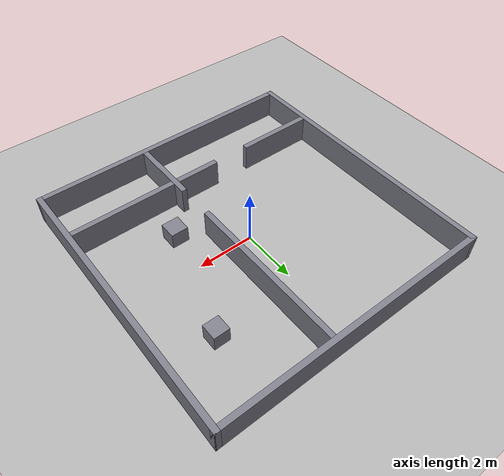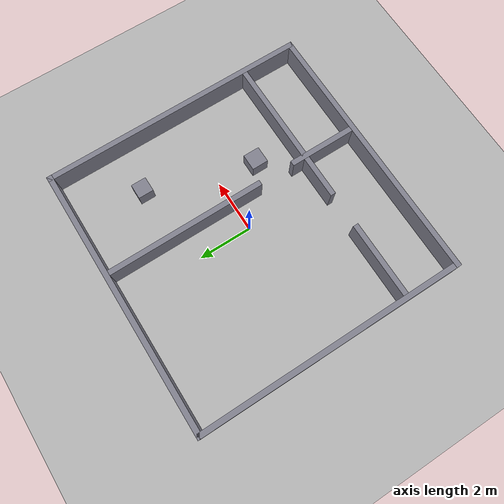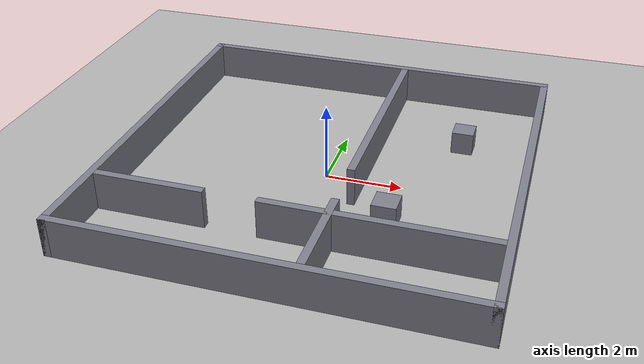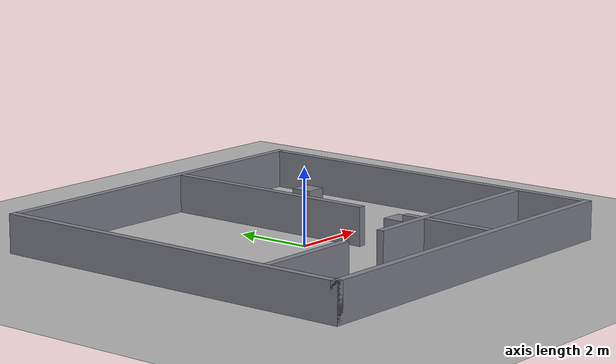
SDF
<?xml version="1.0"?>
<sdf version="1.10">
  <world name="scenario_16">
    <physics name="fast" type="ignored">
      <max_step_size>0.005</max_step_size>
      <real_time_factor>1.0</real_time_factor>
      <real_time_update_rate>200</real_time_update_rate>
    </physics>
    <plugin filename="gz-sim-physics-system" name="gz::sim::systems::Physics"/>
    <plugin filename="gz-sim-user-commands-system" name="gz::sim::systems::UserCommands"/>
    <plugin filename="gz-sim-scene-broadcaster-system" name="gz::sim::systems::SceneBroadcaster"/>
    <plugin filename="gz-sim-sensors-system" name="gz::sim::systems::Sensors">
      <render_engine>ogre2</render_engine>
    </plugin>
    <light type="directional" name="sun">
      <cast_shadows>false</cast_shadows>
      <pose>0 0 10 0 0 0</pose>
      <diffuse>0.9 0.9 0.9 1</diffuse>
      <direction>-0.5 0.2 -0.9</direction>
    </light>
    <model name="ground_plane">
      <static>true</static>
      <link name="link">
        <collision name="c"><geometry><plane><normal>0 0 1</normal><size>20 20</size></plane></geometry></collision>
        <visual name="v"><geometry><plane><normal>0 0 1</normal><size>20 20</size></plane></geometry>
          <material><ambient>0.7 0.7 0.7 1</ambient><diffuse>0.7 0.7 0.7 1</diffuse></material></visual>
      </link>
    </model>
    <model name="box_0">
      <static>true</static>
      <pose>0.0 5.0 0.5 0 0 0</pose>
      <link name="link">
        <collision name="c"><geometry><box><size>10.2 0.2 1.0</size></box></geometry></collision>
        <visual name="v"><geometry><box><size>10.2 0.2 1.0</size></box></geometry>
          <material><ambient>0.5 0.5 0.55 1</ambient><diffuse>0.5 0.5 0.55 1</diffuse></material></visual>
      </link>
    </model>
    <model name="box_1">
      <static>true</static>
      <pose>0.0 -5.0 0.5 0 0 0</pose>
      <link name="link">
        <collision name="c"><geometry><box><size>10.2 0.2 1.0</size></box></geometry></collision>
        <visual name="v"><geometry><box><size>10.2 0.2 1.0</size></box></geometry>
          <material><ambient>0.5 0.5 0.55 1</ambient><diffuse>0.5 0.5 0.55 1</diffuse></material></visual>
      </link>
    </model>
    <model name="box_2">
      <static>true</static>
      <pose>5.0 0.0 0.5 0 0 0</pose>
      <link name="link">
        <collision name="c"><geometry><box><size>0.2 10.2 1.0</size></box></geometry></collision>
        <visual name="v"><geometry><box><size>0.2 10.2 1.0</size></box></geometry>
          <material><ambient>0.5 0.5 0.55 1</ambient><diffuse>0.5 0.5 0.55 1</diffuse></material></visual>
      </link>
    </model>
    <model name="box_3">
      <static>true</static>
      <pose>-5.0 0.0 0.5 0 0 0</pose>
      <link name="link">
        <collision name="c"><geometry><box><size>0.2 10.2 1.0</size></box></geometry></collision>
        <visual name="v"><geometry><box><size>0.2 10.2 1.0</size></box></geometry>
          <material><ambient>0.5 0.5 0.55 1</ambient><diffuse>0.5 0.5 0.55 1</diffuse></material></visual>
      </link>
    </model>
    <model name="box_4">
      <static>true</static>
      <pose>0.95 -3.6432091790146193 0.5 0 0 0</pose>
      <link name="link">
        <collision name="c"><geometry><box><size>0.2 2.513581641970762 1.0</size></box></geometry></collision>
        <visual name="v"><geometry><box><size>0.2 2.513581641970762 1.0</size></box></geometry>
          <material><ambient>0.5 0.5 0.55 1</ambient><diffuse>0.5 0.5 0.55 1</diffuse></material></visual>
      </link>
    </model>
    <model name="box_5">
      <static>true</static>
      <pose>0.95 1.9117908209853811 0.5 0 0 0</pose>
      <link name="link">
        <collision name="c"><geometry><box><size>0.2 5.976418358029239 1.0</size></box></geometry></collision>
        <visual name="v"><geometry><box><size>0.2 5.976418358029239 1.0</size></box></geometry>
          <material><ambient>0.5 0.5 0.55 1</ambient><diffuse>0.5 0.5 0.55 1</diffuse></material></visual>
      </link>
    </model>
    <model name="box_6">
      <static>true</static>
      <pose>-3.4881630997692716 -2.94 0.5 0 0 0</pose>
      <link name="link">
        <collision name="c"><geometry><box><size>2.8236738004614574 0.2 1.0</size></box></geometry></collision>
        <visual name="v"><geometry><box><size>2.8236738004614574 0.2 1.0</size></box></geometry>
          <material><ambient>0.5 0.5 0.55 1</ambient><diffuse>0.5 0.5 0.55 1</diffuse></material></visual>
      </link>
    </model>
    <model name="box_7">
      <static>true</static>
      <pose>2.0668369002307285 -2.94 0.5 0 0 0</pose>
      <link name="link">
        <collision name="c"><geometry><box><size>5.666326199538544 0.2 1.0</size></box></geometry></collision>
        <visual name="v"><geometry><box><size>5.666326199538544 0.2 1.0</size></box></geometry>
          <material><ambient>0.5 0.5 0.55 1</ambient><diffuse>0.5 0.5 0.55 1</diffuse></material></visual>
      </link>
    </model>
    <model name="box_8">
      <static>true</static>
      <pose>1.95 -1.52 0.3 0 0 0</pose>
      <link name="link">
        <collision name="c"><geometry><box><size>0.62 0.62 0.6</size></box></geometry></collision>
        <visual name="v"><geometry><box><size>0.62 0.62 0.6</size></box></geometry>
          <material><ambient>0.5 0.5 0.55 1</ambient><diffuse>0.5 0.5 0.55 1</diffuse></material></visual>
      </link>
    </model>
    <model name="box_9">
      <static>true</static>
      <pose>3.15 2.46 0.3 0 0 0</pose>
      <link name="link">
        <collision name="c"><geometry><box><size>0.57 0.57 0.6</size></box></geometry></collision>
        <visual name="v"><geometry><box><size>0.57 0.57 0.6</size></box></geometry>
          <material><ambient>0.5 0.5 0.55 1</ambient><diffuse>0.5 0.5 0.55 1</diffuse></material></visual>
      </link>
    </model>
  </world>
</sdf>
